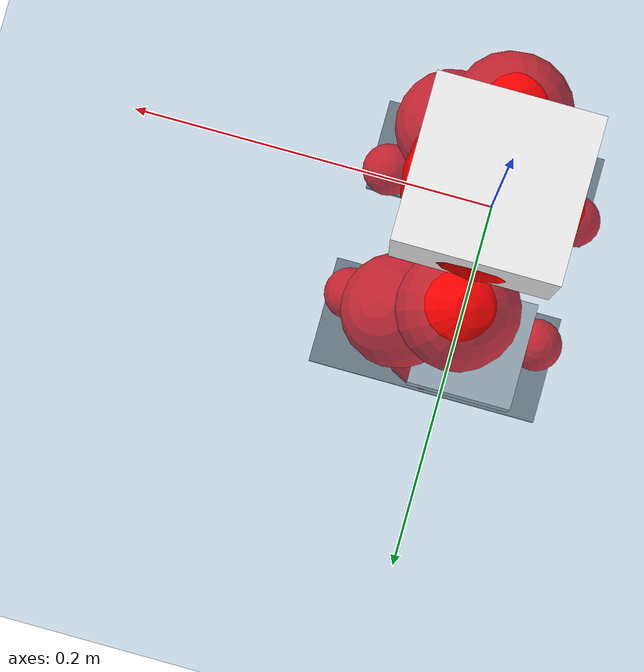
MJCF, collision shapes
<mujoco model="pi_12dof_release_v1">
  <compiler angle="radian" assetdir="assets" balanceinertia="true" inertiafromgeom="false"/>

  <option timestep="0.005" density="1.2" viscosity="2e-05"/>

  <size nkey="1"/>

  <visual>
    <quality shadowsize="8192"/>
    <map shadowclip="0.5"/>
  </visual>

  <default>
    <default class="/">
      <joint armature="0.01" damping="0.01" frictionloss="0.01"/>
      <geom contype="0" conaffinity="0" group="1" solref="-1000 -80"/>
      <site size="0.01 0.005 0.005" group="5"/>
      <general forcelimited="true" biastype="affine" gainprm="20" biasprm="0 -20 -0.5"/>
      <default class="foot">
        <geom size="0.0845 0.036 0.005" type="box" condim="6" group="4" priority="1" friction="0.9 0.2 0.2" solimp="0.015 1 0.005"/>
      </default>
      <default class="reward_collision_sphere">
        <geom group="5" rgba="1 0 0 1"/>
      </default>
    </default>
  </default>

  <asset>
    <texture type="skybox" colorspace="auto" name="//unnamed_texture_0" builtin="gradient" rgb1="0.95 0.95 0.95" rgb2="0.95 0.95 0.95" width="100" height="600"/>
    <texture type="2d" colorspace="auto" name="texplane" builtin="checker" rgb1="0.345 0.575 0.748" rgb2="0.345 0.575 0.748" markrgb="1 1 1" width="512" height="512"/>
    <material name="MatPlane" class="/" texture="texplane" texuniform="true" texrepeat="2 2" specular="0.9"/>
    <mesh name="baselink_1" class="/" file="baselink_1.STL"/>
    <mesh name="r_hip_pitch_link" class="/" file="r_hip_pitch_link.STL"/>
    <mesh name="r_hip_roll_link" class="/" file="r_hip_roll_link.STL"/>
    <mesh name="r_thigh_link" class="/" file="r_thigh_link.STL"/>
    <mesh name="r_calf_link" class="/" file="r_calf_link.STL"/>
    <mesh name="r_ankle_pitch_link" class="/" file="r_ankle_pitch_link.STL"/>
    <mesh name="r_ankle_roll_link" class="/" file="r_ankle_roll_link.STL"/>
    <mesh name="l_hip_pitch_link" class="/" file="l_hip_pitch_link.STL"/>
    <mesh name="l_hip_roll_link" class="/" file="l_hip_roll_link.STL"/>
    <mesh name="l_thigh_link" class="/" file="l_thigh_link.STL"/>
    <mesh name="l_calf_link" class="/" file="l_calf_link.STL"/>
    <mesh name="l_ankle_pitch_link" class="/" file="l_ankle_pitch_link.STL"/>
    <mesh name="l_ankle_roll_link" class="/" file="l_ankle_roll_link.STL"/>
  </asset>

  <worldbody>
    <geom name="floor" class="/" size="100 100 0.125" type="plane" group="0" material="MatPlane"/>
    <light name="toplight_shadow" class="/" pos="0 0 5" dir="0.0990148 0.0990148 -0.990148" type="directional" ambient="0.04 0.04 0.04" diffuse="0.55 0.55 0.55" specular="0.12 0.12 0.12"/>
    <light name="toplight_fill" class="/" pos="0 0 5" dir="0.0990148 0.0990148 -0.990148" type="directional" castshadow="false" ambient="0.04 0.04 0.04" diffuse="0.3 0.3 0.3" specular="0.08 0.08 0.08"/>
    <body name="trunk" pos="0.00236787 -0.000490077 0.000652052" quat="0.999999 -0.000841964 -0.000491844 -0.000327865">
      <inertial pos="-0.00010282 -0.00158514 0.0378075" quat="0.695076 0.00950462 0.0102913 0.7188" mass="1.39427" diaginertia="0.0074459 0.00192422 0.00305019"/>
      <joint name="//unnamed_joint_0" type="free"/>
      <geom name="//unnamed_geom_1" class="/" type="mesh" density="0" rgba="1 1 1 1" mesh="baselink_1"/>
      <geom name="//unnamed_geom_2" class="/" size="0.0438209 0.0438209 0.0438209" pos="0 0 0.0755437" type="box" rgba="1 1 1 1"/>
      <geom name="//unnamed_geom_3" class="reward_collision_sphere" size="0.048203" pos="0 0 0.0661007"/>
      <site name="imu" class="/" pos="-0.00270615 -0.0013241 0.00962184" size="0.00876419"/>
      <camera name="track" class="/" pos="0 -1.47177 0" quat="0.707107 0.707107 0 0" mode="trackcom"/>
      <camera name="ego_camera" class="/" pos="0.0711807 0 0.169973" quat="-0.5 -0.5 0.5 0.5"/>
      <body name="r_hip_pitch_link" pos="-1.38332e-05 -0.015993 -0.0314501" quat="0.992248 0.000282055 -0.124273 -0.000248189">
        <inertial pos="0.00039369 -0.0424801 -0.000238859" quat="-0.0209406 0.706855 -0.0270343 0.706532" mass="0.249435" diaginertia="8.5494e-05 2.09085e-05 6.22403e-05"/>
        <joint name="r_hip_pitch_joint" class="/" pos="0 0 0" axis="0.00104203 -0.999993 -0.00352642" stiffness="0.000215874" range="-1.7383 1.25315" armature="0.00911258" damping="0.0203113" frictionloss="0.00917204"/>
        <geom name="//unnamed_geom_4" class="/" type="mesh" density="0" rgba="0.75294 0.75294 0.75294 1" mesh="r_hip_pitch_link"/>
        <geom name="//unnamed_geom_5" class="/" size="0.000438209 0.000438209 0.000438209" type="box" rgba="0.75294 0.75294 0.75294 1"/>
        <body name="r_hip_roll_link" pos="-8.21182e-05 -0.0403137 0.000456179" quat="1 1.04145e-05 0.000497011 -0.000496129">
          <inertial pos="-6.57426e-05 -0.000633006 -0.0600692" quat="0.705939 -0.0789745 -0.0825986 0.698993" mass="0.257406" diaginertia="0.000252788 5.97484e-05 9.8277e-05"/>
          <joint name="r_hip_roll_joint" class="/" pos="0 0 0" axis="-0.999988 -0.00440319 0.00215658" stiffness="0.00129089" range="-0.104818 0.480725" armature="0.00916758" damping="0" frictionloss="0.00941742"/>
          <geom name="//unnamed_geom_6" class="/" type="mesh" density="0" rgba="0.75294 0.75294 0.75294 1" mesh="r_hip_roll_link"/>
          <geom name="//unnamed_geom_7" class="/" size="0.000438209 0.000438209 0.000438209" type="box" rgba="0.75294 0.75294 0.75294 1"/>
          <geom name="//unnamed_geom_8" class="reward_collision_sphere" size="0.0350568"/>
          <body name="r_thigh_link" pos="-0.00126524 -0.00119633 -0.0643551" quat="1 6.54447e-05 -3.09963e-05 -1.0185e-05">
            <inertial pos="-0.00096993 0.00103821 -0.0443038" quat="0.739539 0.673105 0.0034394 -0.000153278" mass="0.0758328" diaginertia="9.9124e-05 2.1126e-05 4.42538e-05"/>
            <joint name="r_thigh_joint" class="/" pos="0 0 0" axis="0.00247317 0.00152346 -0.999996" range="-0.32648 0.592873" armature="0.00878231" damping="0.00120279" frictionloss="0.00772215"/>
            <geom name="//unnamed_geom_9" class="/" type="mesh" density="0" rgba="0.75294 0.75294 0.75294 1" mesh="r_thigh_link"/>
            <geom name="//unnamed_geom_10" class="/" size="0.000438209 0.000438209 0.000438209" type="box" rgba="0.75294 0.75294 0.75294 1"/>
            <body name="r_calf_link" pos="-0.00126157 -0.00201391 -0.068548" quat="0.947596 0.000248154 0.319471 0.000496773">
              <inertial pos="-0.000957607 -0.00240405 -0.0655794" quat="0.999989 0.00368105 0.00210213 0.00213798" mass="0.543636" diaginertia="0.00268306 0.000757229 0.000130762"/>
              <joint name="r_calf_joint" class="/" pos="0 0 0" axis="-0.00437824 -0.99999 0.0010623" range="-1.605 0.638159" armature="0.0087601" damping="0.00731638" frictionloss="0.00922587"/>
              <geom name="//unnamed_geom_11" class="/" type="mesh" density="0" rgba="0.75294 0.75294 0.75294 1" mesh="r_calf_link"/>
              <geom name="//unnamed_geom_12" class="/" size="0.000438209 0.000438209 0.000438209" type="box" rgba="0.75294 0.75294 0.75294 1"/>
              <geom name="//unnamed_geom_13" class="reward_collision_sphere" size="0.0350568"/>
              <body name="r_ankle_pitch_link" pos="-0.000446495 -0.00146602 -0.132404" quat="0.980072 -8.22187e-05 -0.198644 -3.32567e-05">
                <inertial pos="0.00435255 0.00159848 -0.00084548" quat="0.00175777 0.708265 -0.00138033 0.705943" mass="0.119596" diaginertia="0.000237026 4.88306e-05 9.23128e-05"/>
                <joint name="r_ankle_pitch_joint" class="/" pos="0 0 0" axis="0.00269194 -0.999956 0.00900995" range="-1.31326 0.496674" armature="0.0089493" damping="0.00180042" frictionloss="0.00870662"/>
                <geom name="//unnamed_geom_14" class="/" type="mesh" density="0" rgba="0.75294 0.75294 0.75294 1" mesh="r_ankle_pitch_link"/>
                <geom name="//unnamed_geom_15" class="/" size="0.0341803 0.0350568 0.0219105" type="box" rgba="0.75294 0.75294 0.75294 1"/>
                <body name="r_ankle_roll_link" pos="0.0720402 0.00210917 0.000969782" quat="1 0.000102039 -0.000140363 0.000185808">
                  <inertial pos="-0.0224686 0.000715066 -0.0139861" quat="0.567423 0.42646 0.431427 0.556807" mass="0.348718" diaginertia="0.000874004 0.00022279 0.000210694"/>
                  <joint name="r_ankle_roll_joint" class="/" pos="0 0 0" axis="-0.999924 0.00786726 -0.0095194" range="-0.191443 0.161714" armature="0.00963846" damping="0.0091335" frictionloss="0.00884241"/>
                  <geom name="//unnamed_geom_16" class="/" type="mesh" density="0" rgba="0.75294 0.75294 0.75294 1" mesh="r_ankle_roll_link"/>
                  <geom name="//unnamed_geom_17" class="/" type="mesh" rgba="0.75294 0.75294 0.75294 1" mesh="r_ankle_roll_link"/>
                  <geom name="right_foot" class="foot" size="0.0742487 0.0301939 0.00431893" pos="-0.0484029 0 -0.041549"/>
                  <geom name="//unnamed_geom_19" class="reward_collision_sphere" size="0.0350568" pos="-0.0474538 0 -0.0188859"/>
                  <geom name="//unnamed_geom_20" class="reward_collision_sphere" size="0.0175284" pos="0.0142361 0.0147177 -0.0377718"/>
                  <geom name="//unnamed_geom_21" class="reward_collision_sphere" size="0.0175284" pos="-0.113889 0.0147177 -0.0377718"/>
                  <site name="right_foot" class="foot" pos="-0.0484029 0 -0.041549" size="0.00876419"/>
                </body>
              </body>
            </body>
          </body>
        </body>
      </body>
      <body name="l_hip_pitch_link" pos="-9.03227e-05 0.0167086 -0.0317437" quat="0.992198 -1.61125e-05 -0.124674 -6.63341e-05">
        <inertial pos="-0.000166847 0.0416514 -0.0009444" quat="-0.0365075 0.712456 0.0362046 0.699831" mass="0.267699" diaginertia="9.89079e-05 2.25997e-05 7.70098e-05"/>
        <joint name="l_hip_pitch_joint" class="/" pos="0 0 0" axis="-0.00211853 0.999935 0.0111797" range="-1.26807 1.75544" armature="0.0086493" damping="0.00690998" frictionloss="0.00884696"/>
        <geom name="//unnamed_geom_22" class="/" type="mesh" density="0" rgba="0.75294 0.75294 0.75294 1" mesh="l_hip_pitch_link"/>
        <geom name="//unnamed_geom_23" class="/" size="0.000438209 0.000438209 0.000438209" type="box" rgba="0.75294 0.75294 0.75294 1"/>
        <body name="l_hip_roll_link" pos="0.0003527 0.0395518 0.00199842" quat="1 3.34373e-05 0.000134684 -0.000145965">
          <inertial pos="-0.00132484 5.30811e-05 -0.0579132" quat="0.700802 -0.0785378 -0.0747871 0.705064" mass="0.265806" diaginertia="0.000254316 5.92222e-05 9.58992e-05"/>
          <joint name="l_hip_roll_joint" class="/" pos="0 0 0" axis="-0.999991 -0.00154656 0.00385055" range="-0.507955 0.14133" armature="0.00909752" damping="0.00481265" frictionloss="0.00921368"/>
          <geom name="//unnamed_geom_24" class="/" type="mesh" density="0" rgba="0.75294 0.75294 0.75294 1" mesh="l_hip_roll_link"/>
          <geom name="//unnamed_geom_25" class="/" size="0.000438209 0.000438209 0.000438209" type="box" rgba="0.75294 0.75294 0.75294 1"/>
          <geom name="//unnamed_geom_26" class="reward_collision_sphere" size="0.0350568"/>
          <body name="l_thigh_link" pos="4.60452e-05 -0.00035947 -0.0674859" quat="1 2.59741e-05 0.000112328 -8.94859e-06">
            <inertial pos="0.00138834 0.000860094 -0.0451708" quat="0.674258 0.738495 0.000403623 0.000906604" mass="0.0748557" diaginertia="9.53056e-05 2.02586e-05 4.16824e-05"/>
            <joint name="l_thigh_joint" class="/" pos="0 0 0" axis="0.000667708 0.00412875 -0.999991" range="-0.598812 0.310177" armature="0.00856766" damping="0" frictionloss="0.0085938"/>
            <geom name="//unnamed_geom_27" class="/" type="mesh" density="0" rgba="0.75294 0.75294 0.75294 1" mesh="l_thigh_link"/>
            <geom name="//unnamed_geom_28" class="/" size="0.000438209 0.000438209 0.000438209" type="box" rgba="0.75294 0.75294 0.75294 1"/>
            <body name="l_calf_link" pos="-0.000721387 0.000765531 -0.0659023" quat="0.947328 -0.000330761 0.320264 0.000375425">
              <inertial pos="0.00258874 0.00287659 -0.0684831" quat="0.999996 0.00117576 0.00110638 0.00230391" mass="0.549248" diaginertia="0.00272872 0.000757151 0.000130471"/>
              <joint name="l_calf_joint" class="/" pos="0 0 0" axis="-0.000238843 0.999999 0.00107204" stiffness="0.00288797" range="-0.654954 1.65408" armature="0.00838366" damping="0.00736385" frictionloss="0.0080667"/>
              <geom name="//unnamed_geom_29" class="/" type="mesh" density="0" rgba="0.75294 0.75294 0.75294 1" mesh="l_calf_link"/>
              <geom name="//unnamed_geom_30" class="/" size="0.000438209 0.000438209 0.000438209" type="box" rgba="0.75294 0.75294 0.75294 1"/>
              <geom name="//unnamed_geom_31" class="reward_collision_sphere" size="0.0350568"/>
              <body name="l_ankle_pitch_link" pos="0.00144849 0.000336325 -0.134477" quat="0.980058 -5.44097e-05 -0.198709 -3.91059e-06">
                <inertial pos="0.00454591 -0.000583216 3.69257e-05" quat="-0.00263093 0.708033 0.00162767 0.706173" mass="0.115881" diaginertia="0.000236694 4.80391e-05 9.00955e-05"/>
                <joint name="l_ankle_pitch_joint" class="/" pos="0 0 0" axis="3.68169e-05 1 3.86359e-05" range="-0.504603 1.31366" armature="0.00877039" damping="0.0117033" frictionloss="0.00841664"/>
                <geom name="//unnamed_geom_32" class="/" type="mesh" density="0" rgba="0.75294 0.75294 0.75294 1" mesh="l_ankle_pitch_link"/>
                <geom name="//unnamed_geom_33" class="/" size="0.0341803 0.0350568 0.0219105" type="box" rgba="0.75294 0.75294 0.75294 1"/>
                <body name="l_ankle_roll_link" pos="0.0717421 0.000463711 -0.000726496" quat="1 4.71014e-05 -0.000262694 -6.15561e-05">
                  <inertial pos="-0.0245033 0.000106618 -0.0136648" quat="0.56016 0.431627 0.434166 0.55805" mass="0.346189" diaginertia="0.000858644 0.000221478 0.000215938"/>
                  <joint name="l_ankle_roll_joint" class="/" pos="0 0 0" axis="-0.999948 -0.0100839 -0.00120117" range="-0.154411 0.138492" armature="0.00918951" damping="0.0129451" frictionloss="0.00917198"/>
                  <geom name="//unnamed_geom_34" class="/" type="mesh" density="0" rgba="0.75294 0.75294 0.75294 1" mesh="l_ankle_roll_link"/>
                  <geom name="//unnamed_geom_35" class="/" type="mesh" rgba="0.75294 0.75294 0.75294 1" mesh="l_ankle_roll_link"/>
                  <geom name="left_foot" class="foot" size="0.0773166 0.035616 0.00405209" pos="-0.0484029 0 -0.041549"/>
                  <geom name="//unnamed_geom_37" class="reward_collision_sphere" size="0.0350568" pos="-0.0474538 0 -0.0188859"/>
                  <geom name="//unnamed_geom_38" class="reward_collision_sphere" size="0.0175284" pos="0.0142361 -0.0147177 -0.0377718"/>
                  <geom name="//unnamed_geom_39" class="reward_collision_sphere" size="0.0175284" pos="-0.113889 -0.0147177 -0.0377718"/>
                  <site name="left_foot" class="foot" pos="-0.0484029 0 -0.041549" size="0.00876419"/>
                </body>
              </body>
            </body>
          </body>
        </body>
      </body>
    </body>
  </worldbody>

  <contact>
    <pair class="/" geom1="floor" geom2="right_foot" name="//unnamed_contact_1"/>
    <pair class="/" geom1="floor" geom2="left_foot" name="//unnamed_contact_0"/>
  </contact>

  <actuator>
    <general name="r_hip_pitch_joint" class="/" joint="r_hip_pitch_joint" forcerange="-18.6258 18.6258" gainprm="17.6603" biasprm="0 -17.6603 -0.433266"/>
    <general name="r_hip_roll_joint" class="/" joint="r_hip_roll_joint" forcerange="-18.4712 18.4712" gainprm="17.6603" biasprm="0 -17.6603 -0.433266"/>
    <general name="r_thigh_joint" class="/" joint="r_thigh_joint" forcerange="-18.3885 18.3885" gainprm="17.6603" biasprm="0 -17.6603 -0.433266"/>
    <general name="r_calf_joint" class="/" joint="r_calf_joint" forcerange="-19.9827 19.9827" gainprm="17.6603" biasprm="0 -17.6603 -0.433266"/>
    <general name="r_ankle_pitch_joint" class="/" joint="r_ankle_pitch_joint" forcerange="-18.1995 18.1995" gainprm="17.6603" biasprm="0 -17.6603 -0.433266"/>
    <general name="r_ankle_roll_joint" class="/" joint="r_ankle_roll_joint" forcerange="-17.0444 17.0444" gainprm="17.6603" biasprm="0 -17.6603 -0.433266"/>
    <general name="l_hip_pitch_joint" class="/" joint="l_hip_pitch_joint" forcerange="-18.4919 18.4919" gainprm="17.6603" biasprm="0 -17.6603 -0.433266"/>
    <general name="l_hip_roll_joint" class="/" joint="l_hip_roll_joint" forcerange="-18.6485 18.6485" gainprm="17.6603" biasprm="0 -17.6603 -0.433266"/>
    <general name="l_thigh_joint" class="/" joint="l_thigh_joint" forcerange="-18.1336 18.1336" gainprm="17.6603" biasprm="0 -17.6603 -0.433266"/>
    <general name="l_calf_joint" class="/" joint="l_calf_joint" forcerange="-18.3948 18.3948" gainprm="17.6603" biasprm="0 -17.6603 -0.433266"/>
    <general name="l_ankle_pitch_joint" class="/" joint="l_ankle_pitch_joint" forcerange="-18.1105 18.1105" gainprm="17.6603" biasprm="0 -17.6603 -0.433266"/>
    <general name="l_ankle_roll_joint" class="/" joint="l_ankle_roll_joint" forcerange="-18.6159 18.6159" gainprm="17.6603" biasprm="0 -17.6603 -0.433266"/>
  </actuator>

  <sensor>
    <gyro site="imu" name="imu_angular_velocity"/>
    <velocimeter site="imu" name="imu_linear_velocity"/>
    <framelinvel objtype="site" objname="left_foot" name="left_foot_global_linear_velocity"/>
    <framelinvel objtype="site" objname="right_foot" name="right_foot_global_linear_velocity"/>
  </sensor>

  <keyframe>
    <key name="home" qpos="0 0 0.291 1 0 0 0 0.4 0 0 -0.8 0.4 0 -0.4 0 0 0.8 -0.4 0"/>
  </keyframe>
</mujoco>
